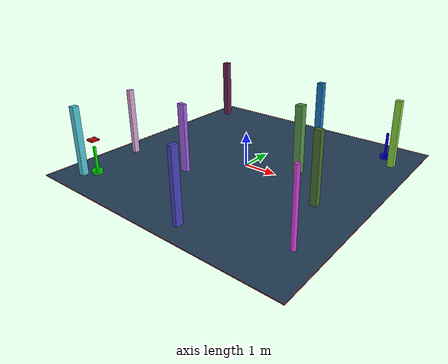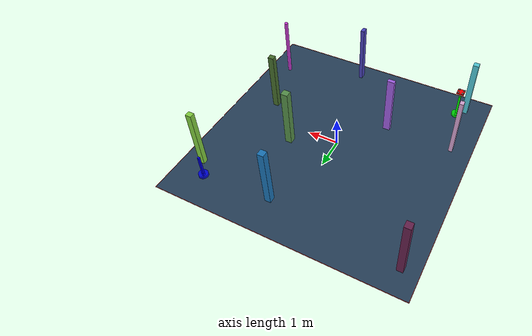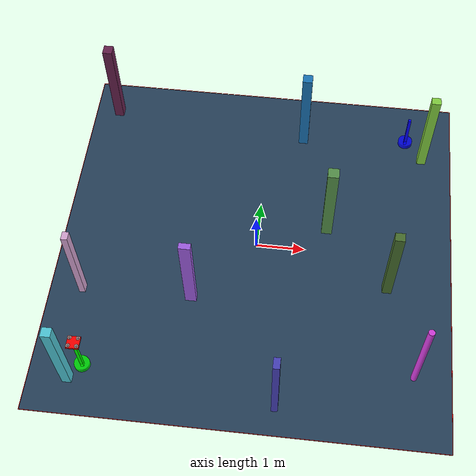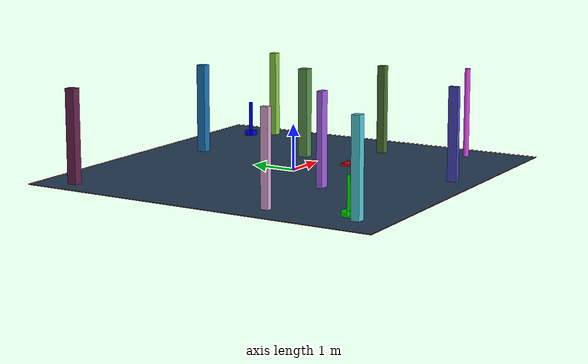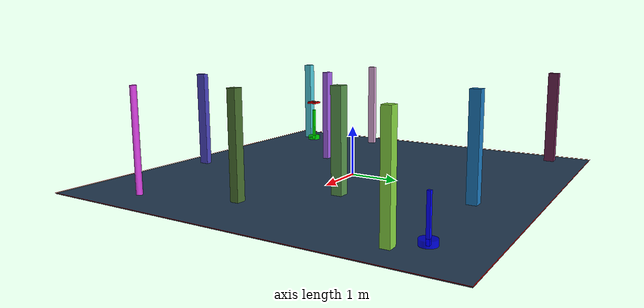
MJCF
<?xml version='1.0' encoding='utf-8'?>
<mujoco model="complex_uav_env">
  <compiler angle="degree" coordinate="local" inertiafromgeom="true" />
  <option integrator="RK4" timestep="0.01" />

  <visual>
    <headlight diffuse="0.6 0.6 0.6" ambient="0.3 0.3 0.3" />
    <rgba haze="0.15 0.25 0.35 1" />
    <global offwidth="2560" offheight="1440" />
  </visual>

  <asset>
    <texture type="skybox" builtin="gradient" rgb1="0.3 0.5 0.7" rgb2="0 0 0" width="512" height="3072" />
    <texture name="grid" type="2d" builtin="checker" rgb1="0.1 0.2 0.3" rgb2="0.2 0.3 0.4" width="512" height="512" />
    <material name="grid" texture="grid" texrepeat="1 1" />
  </asset>

  <worldbody>

    <geom name="ground" type="plane" size="4.0 4.0 0.1" material="grid" />
    <light name="light1" pos="0 0 4" dir="0 0 -1" diffuse="1 1 1" />

    <geom name="start_marker" type="cylinder" size="0.15 0.05" pos="-3.0 -3.0 0.05" rgba="0 1 0 0.8" />
    <geom name="start_pole" type="box" size="0.03 0.03 0.4" pos="-3.0 -3.0 0.4" rgba="0 1 0 1" />

    <geom name="goal_marker" type="cylinder" size="0.15 0.05" pos="3.0 3.0 0.05" rgba="0 0 1 0.8" />
    <geom name="goal_pole" type="box" size="0.03 0.03 0.4" pos="3.0 3.0 0.4" rgba="0 0 1 1" />

    <body name="chassis" pos="-3.0 -3.0 1.0">
      <joint type="free" name="root" />
      <geom type="box" size="0.12 0.12 0.02" rgba="1.0 0.0 0.0 1.0" mass="0.8" />

      <geom type="box" size="0.08 0.01 0.005" pos="0 0 0.01" rgba="0.3 0.3 0.3 1" />
      <geom type="box" size="0.01 0.08 0.005" pos="0 0 0.01" rgba="0.3 0.3 0.3 1" />

      <geom type="cylinder" size="0.015 0.02" pos="0.08 0.08 0.015" rgba="0.2 0.2 0.2 1" />
      <geom type="cylinder" size="0.015 0.02" pos="-0.08 0.08 0.015" rgba="0.2 0.2 0.2 1" />
      <geom type="cylinder" size="0.015 0.02" pos="0.08 -0.08 0.015" rgba="0.2 0.2 0.2 1" />
      <geom type="cylinder" size="0.015 0.02" pos="-0.08 -0.08 0.015" rgba="0.2 0.2 0.2 1" />

      <geom type="cylinder" size="0.04 0.002" pos="0.08 0.08 0.035" rgba="0.7 0.7 0.7 0.8" />
      <geom type="cylinder" size="0.04 0.002" pos="-0.08 0.08 0.035" rgba="0.7 0.7 0.7 0.8" />
      <geom type="cylinder" size="0.04 0.002" pos="0.08 -0.08 0.035" rgba="0.7 0.7 0.7 0.8" />
      <geom type="cylinder" size="0.04 0.002" pos="-0.08 -0.08 0.035" rgba="0.7 0.7 0.7 0.8" />

      <site name="motor1" pos="0.08 0.08 0" size="0.01" />
      <site name="motor2" pos="-0.08 0.08 0" size="0.01" />
      <site name="motor3" pos="0.08 -0.08 0" size="0.01" />
      <site name="motor4" pos="-0.08 -0.08 0" size="0.01" />
    </body>
    <geom name="test_obs_0" type="box" size="0.0939913075928492 0.08498133636380122 1.0" pos="2.706615239656537 -0.7417016946620271 1.0" rgba="0.2782856719732404 0.4295047491845001 0.1776594021768248 1.0" />
    <geom name="test_obs_1" type="box" size="0.09734740912443937 0.105071755746201 1.0" pos="-3.4718462110318686 3.2073135157010313 1.0" rgba="0.39746541381774936 0.12729884774662975 0.2997422447445298 1.0" />
    <geom name="test_obs_2" type="cylinder" size="0.0607905285095292 1.0" pos="3.2758227690459076 -2.585466497978894 1.0" rgba="0.8313881088417919 0.24333306931589382 0.8664499173904546 1.0" />
    <geom name="test_obs_3" type="box" size="0.06070995001026249 0.08297600550851553 1.0" pos="-3.3411738191175813 -1.3730354214818146 1.0" rgba="0.8403583938921914 0.6462439709772271 0.8246611220589505 1.0" />
    <geom name="test_obs_4" type="box" size="0.10868200270520925 0.10749289260146036 1.0" pos="1.419251432292004 0.5521325216221533 1.0" rgba="0.3374973301590341 0.5696158103972793 0.29181018109514145 1.0" />
    <geom name="test_obs_5" type="box" size="0.0912128625023042 0.08205054137169934 1.0" pos="3.360792716638672 2.546197543704353 1.0" rgba="0.5158012966567784 0.816041682551472 0.24938673371053346 1.0" />
    <geom name="test_obs_6" type="box" size="0.08939219866800324 0.08860889100990799 1.0" pos="-3.2251364778928933 -3.2898151859809883 1.0" rgba="0.3121256490805404 0.7862219915875059 0.8464699516591093 1.0" />
    <geom name="test_obs_7" type="box" size="0.06138118260217171 0.1039945889599985 1.0" pos="0.7180187200004884 -3.4266019776733643 1.0" rgba="0.28102537181840487 0.2582397113132924 0.732705948648637 1.0" />
    <geom name="test_obs_8" type="box" size="0.09988869010408588 0.10106569127796511 1.0" pos="0.750125734144289 2.8612584310262994 1.0" rgba="0.10051122421878977 0.45526333617877046 0.7154844629812384 1.0" />
    <geom name="test_obs_9" type="box" size="0.11237358546416387 0.062410965131757264 1.0" pos="-1.1530776105434948 -1.3555649551948876 1.0" rgba="0.6286010661497883 0.36786572322294286 0.8946682166758351 1.0" />
  <geom name="boundary_north" type="box" size="4.0 0.005 0.002" pos="0 4.0 0.002" rgba="1.0 0.0 0.0 1.0" /><geom name="boundary_south" type="box" size="4.0 0.005 0.002" pos="0 -4.0 0.002" rgba="1.0 0.0 0.0 1.0" /><geom name="boundary_east" type="box" size="0.005 4.0 0.002" pos="4.0 0 0.002" rgba="1.0 0.0 0.0 1.0" /><geom name="boundary_west" type="box" size="0.005 4.0 0.002" pos="-4.0 0 0.002" rgba="1.0 0.0 0.0 1.0" /></worldbody>

  <actuator>
    <motor name="m1" gear="0 0 1 0 0 0" site="motor1" />
    <motor name="m2" gear="0 0 1 0 0 0" site="motor2" />
    <motor name="m3" gear="0 0 1 0 0 0" site="motor3" />
    <motor name="m4" gear="0 0 1 0 0 0" site="motor4" />
  </actuator>
</mujoco>
